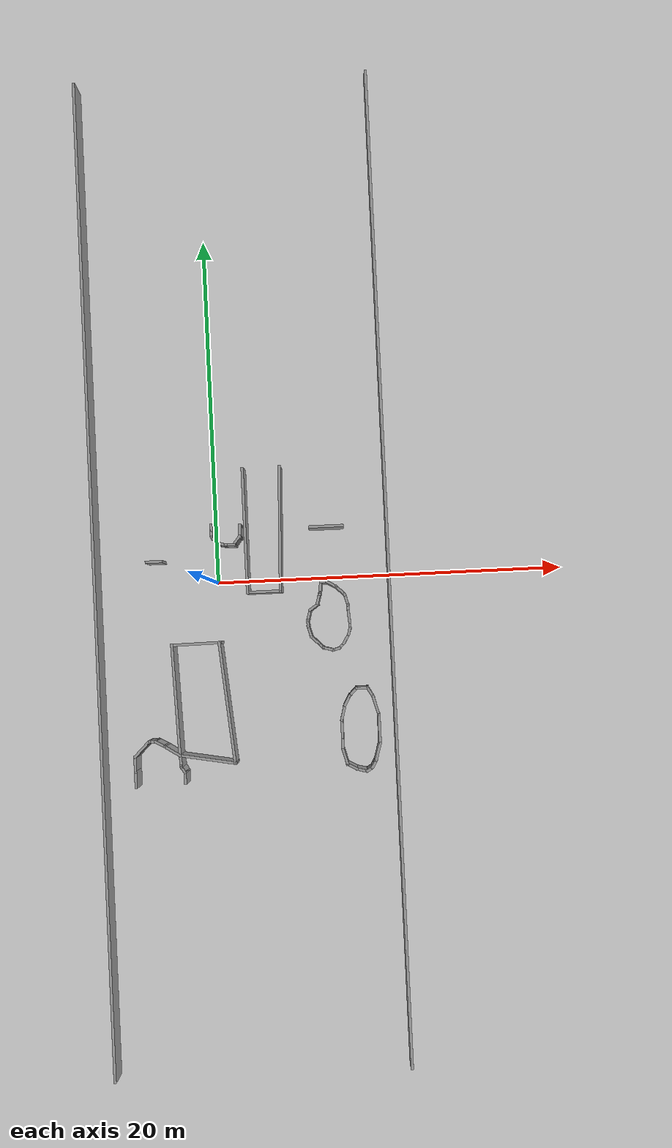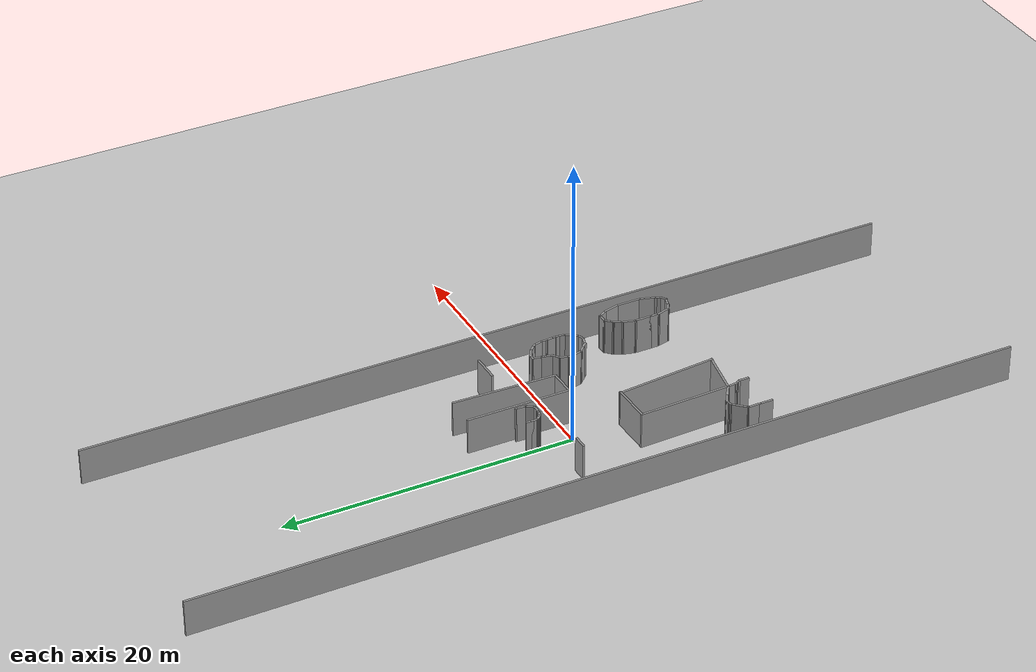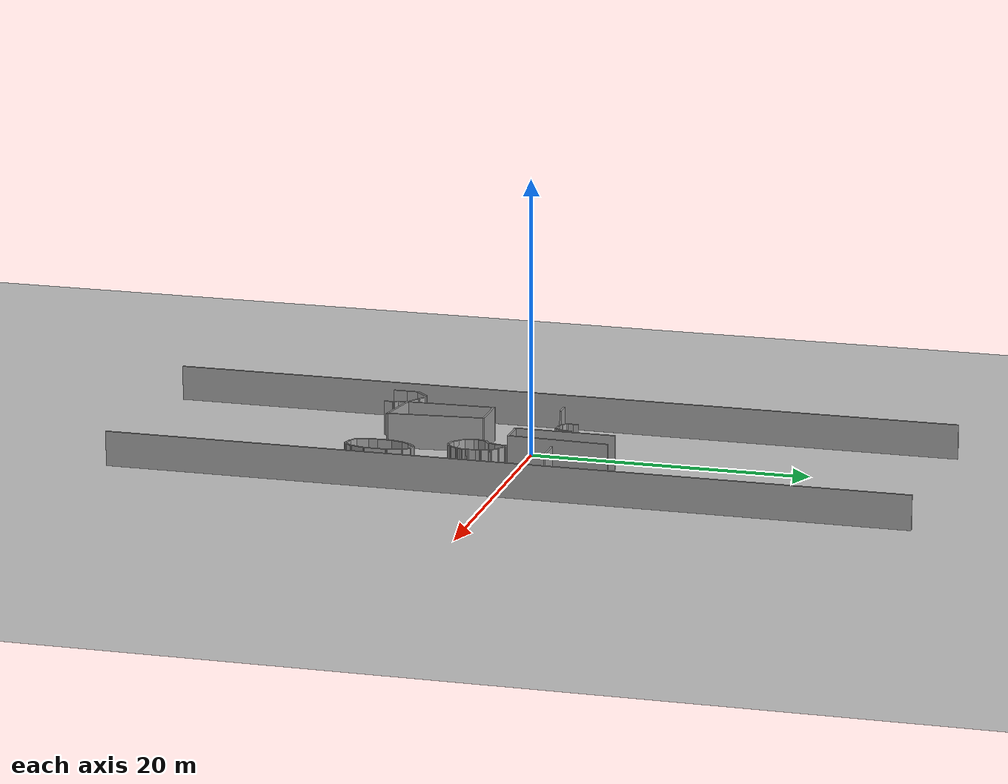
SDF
<sdf version="1.7">
 <world name="default">
  <model name="ground_plane">
   <static>1</static>
   <link name="link">
    <collision name="collision">
     <geometry><plane><normal>0 0 1</normal><size>100 100</size></plane></geometry>
     <surface><friction><ode><mu>100</mu><mu2>50</mu2></ode></friction></surface>
    </collision>
    <visual name="visual">
     <cast_shadows>0</cast_shadows>
     <geometry><plane><normal>0 0 1</normal><size>100 100</size></plane></geometry>
     <material>
      <script><uri>file://media/materials/scripts/gazebo.material</uri><name>Gazebo/Grey</name></script>
     </material>
    </visual>
   </link>
  </model>
  <model name="complex_wall">
   <pose>1.5 0.5 0 0 0 -1.5708</pose>
   <link name="Wall_189">
    <collision name="Wall_189_Collision">
     <geometry><box><size>2 0.15 2.5</size></box></geometry>
     <pose>0 0 1.25 0 -0 0</pose>
    </collision>
    <visual name="Wall_189_Visual">
     <pose>0 0 1.25 0 -0 0</pose>
     <geometry><box><size>2 0.15 2.5</size></box></geometry>
     <material>
      <script><uri>file://media/materials/scripts/gazebo.material</uri><name>Gazebo/Grey</name></script>
      <ambient>1 1 1 1</ambient>
     </material>
     <meta><layer>0</layer></meta>
    </visual>
    <pose>-2.3992 4.94555 0 0 -0 1.5708</pose>
   </link>
   <link name="Wall_193">
    <collision name="Wall_193_Collision">
     <geometry><box><size>7.25 0.15 2.5</size></box></geometry>
     <pose>0 0 1.25 0 -0 0</pose>
    </collision>
    <visual name="Wall_193_Visual">
     <pose>0 0 1.25 0 -0 0</pose>
     <geometry><box><size>7.25 0.15 2.5</size></box></geometry>
     <material>
      <script><uri>file://media/materials/scripts/gazebo.material</uri><name>Gazebo/Grey</name></script>
      <ambient>1 1 1 1</ambient>
     </material>
     <meta><layer>0</layer></meta>
    </visual>
    <pose>-2.36739 0.303352 0 0 -0 0</pose>
   </link>
   <link name="Wall_194">
    <collision name="Wall_194_Collision">
     <geometry><box><size>2.00149 0.15 2.5</size></box></geometry>
     <pose>0 0 1.25 0 -0 0</pose>
    </collision>
    <visual name="Wall_194_Visual">
     <pose>0 0 1.25 0 -0 0</pose>
     <geometry><box><size>2.00149 0.15 2.5</size></box></geometry>
     <material>
      <script><uri>file://media/materials/scripts/gazebo.material</uri><name>Gazebo/Grey</name></script>
      <ambient>1 1 1 1</ambient>
     </material>
     <meta><layer>0</layer></meta>
    </visual>
    <pose>1.18261 1.2291 0 0 -0 1.5708</pose>
   </link>
   <link name="Wall_195">
    <collision name="Wall_195_Collision">
     <geometry><box><size>7.2544 0.15 2.5</size></box></geometry>
     <pose>0 0 1.25 0 -0 0</pose>
    </collision>
    <visual name="Wall_195_Visual">
     <pose>0 0 1.25 0 -0 0</pose>
     <geometry><box><size>7.2544 0.15 2.5</size></box></geometry>
     <material>
      <script><uri>file://media/materials/scripts/gazebo.material</uri><name>Gazebo/Grey</name></script>
      <ambient>1 1 1 1</ambient>
     </material>
     <meta><layer>0</layer></meta>
    </visual>
    <pose>-2.36739 2.30469 0 0 -0 3.1064</pose>
   </link>
   <link name="Wall_207">
    <collision name="Wall_207_Collision">
     <geometry><box><size>0.5 0.15 2.5</size></box></geometry>
     <pose>0 0 1.25 0 -0 0</pose>
    </collision>
    <visual name="Wall_207_Visual">
     <pose>0 0 1.25 0 -0 0</pose>
     <geometry><box><size>0.5 0.15 2.5</size></box></geometry>
     <material>
      <script><uri>file://media/materials/scripts/gazebo.material</uri><name>Gazebo/Grey</name></script>
      <ambient>1 1 1 1</ambient>
     </material>
     <meta><layer>0</layer></meta>
    </visual>
    <pose>-2.60982 -1.61708 0 0 -0 0</pose>
   </link>
   <link name="Wall_208">
    <collision name="Wall_208_Collision">
     <geometry><box><size>0.5 0.15 2.5</size></box></geometry>
     <pose>0 0 1.25 0 -0 0</pose>
    </collision>
    <visual name="Wall_208_Visual">
     <pose>0 0 1.25 0 -0 0</pose>
     <geometry><box><size>0.5 0.15 2.5</size></box></geometry>
     <material>
      <script><uri>file://media/materials/scripts/gazebo.material</uri><name>Gazebo/Grey</name></script>
      <ambient>1 1 1 1</ambient>
     </material>
     <meta><layer>0</layer></meta>
    </visual>
    <pose>-2.25982 -1.61708 0 0 -0 0</pose>
   </link>
   <link name="Wall_209">
    <collision name="Wall_209_Collision">
     <geometry><box><size>0.25 0.15 2.5</size></box></geometry>
     <pose>0 0 1.25 0 -0 0</pose>
    </collision>
    <visual name="Wall_209_Visual">
     <pose>0 0 1.25 0 -0 0</pose>
     <geometry><box><size>0.25 0.15 2.5</size></box></geometry>
     <material>
      <script><uri>file://media/materials/scripts/gazebo.material</uri><name>Gazebo/Grey</name></script>
      <ambient>1 1 1 1</ambient>
     </material>
     <meta><layer>0</layer></meta>
    </visual>
    <pose>-2.04152 -1.59207 0 0 -0 0.523599</pose>
   </link>
   <link name="Wall_210">
    <collision name="Wall_210_Collision">
     <geometry><box><size>0.5 0.15 2.5</size></box></geometry>
     <pose>0 0 1.25 0 -0 0</pose>
    </collision>
    <visual name="Wall_210_Visual">
     <pose>0 0 1.25 0 -0 0</pose>
     <geometry><box><size>0.5 0.15 2.5</size></box></geometry>
     <material>
      <script><uri>file://media/materials/scripts/gazebo.material</uri><name>Gazebo/Grey</name></script>
      <ambient>1 1 1 1</ambient>
     </material>
     <meta><layer>0</layer></meta>
    </visual>
    <pose>-1.87447 -1.44333 0 0 -0 0.785398</pose>
   </link>
   <link name="Wall_211">
    <collision name="Wall_211_Collision">
     <geometry><box><size>0.25 0.15 2.5</size></box></geometry>
     <pose>0 0 1.25 0 -0 0</pose>
    </collision>
    <visual name="Wall_211_Visual">
     <pose>0 0 1.25 0 -0 0</pose>
     <geometry><box><size>0.25 0.15 2.5</size></box></geometry>
     <material>
      <script><uri>file://media/materials/scripts/gazebo.material</uri><name>Gazebo/Grey</name></script>
      <ambient>1 1 1 1</ambient>
     </material>
     <meta><layer>0</layer></meta>
    </visual>
    <pose>-1.72573 -1.27629 0 0 -0 1.0472</pose>
   </link>
   <link name="Wall_212">
    <collision name="Wall_212_Collision">
     <geometry><box><size>0.5 0.15 2.5</size></box></geometry>
     <pose>0 0 1.25 0 -0 0</pose>
    </collision>
    <visual name="Wall_212_Visual">
     <pose>0 0 1.25 0 -0 0</pose>
     <geometry><box><size>0.5 0.15 2.5</size></box></geometry>
     <material>
      <script><uri>file://media/materials/scripts/gazebo.material</uri><name>Gazebo/Grey</name></script>
      <ambient>1 1 1 1</ambient>
     </material>
     <meta><layer>0</layer></meta>
    </visual>
    <pose>-1.65543 -1.06395 0 0 -0 1.309</pose>
   </link>
   <link name="Wall_213">
    <collision name="Wall_213_Collision">
     <geometry><box><size>0.15 0.15 2.5</size></box></geometry>
     <pose>0 0 1.25 0 -0 0</pose>
    </collision>
    <visual name="Wall_213_Visual">
     <pose>0 0 1.25 0 -0 0</pose>
     <geometry><box><size>0.15 0.15 2.5</size></box></geometry>
     <material>
      <script><uri>file://media/materials/scripts/gazebo.material</uri><name>Gazebo/Grey</name></script>
      <ambient>1 1 1 1</ambient>
     </material>
     <meta><layer>0</layer></meta>
    </visual>
    <pose>-1.61014 -0.894911 0 0 -0 0</pose>
   </link>
   <link name="Wall_214">
    <collision name="Wall_214_Collision">
     <geometry><box><size>0.25 0.15 2.5</size></box></geometry>
     <pose>0 0 1.25 0 -0 0</pose>
    </collision>
    <visual name="Wall_214_Visual">
     <pose>0 0 1.25 0 -0 0</pose>
     <geometry><box><size>0.25 0.15 2.5</size></box></geometry>
     <material>
      <script><uri>file://media/materials/scripts/gazebo.material</uri><name>Gazebo/Grey</name></script>
      <ambient>1 1 1 1</ambient>
     </material>
     <meta><layer>0</layer></meta>
    </visual>
    <pose>-1.61014 -0.844911 0 0 -0 1.5708</pose>
   </link>
   <link name="Wall_215">
    <collision name="Wall_215_Collision">
     <geometry><box><size>0.612805 0.15 2.5</size></box></geometry>
     <pose>0 0 1.25 0 -0 0</pose>
    </collision>
    <visual name="Wall_215_Visual">
     <pose>0 0 1.25 0 -0 0</pose>
     <geometry><box><size>0.612805 0.15 2.5</size></box></geometry>
     <material>
      <script><uri>file://media/materials/scripts/gazebo.material</uri><name>Gazebo/Grey</name></script>
      <ambient>1 1 1 1</ambient>
     </material>
     <meta><layer>0</layer></meta>
    </visual>
    <pose>-1.59366 -0.564096 0 0 -0 1.4995</pose>
   </link>
   <link name="Wall_216">
    <collision name="Wall_216_Collision">
     <geometry><box><size>0.698828 0.15 2.5</size></box></geometry>
     <pose>0 0 1.25 0 -0 0</pose>
    </collision>
    <visual name="Wall_216_Visual">
     <pose>0 0 1.25 0 -0 0</pose>
     <geometry><box><size>0.698828 0.15 2.5</size></box></geometry>
     <material>
      <script><uri>file://media/materials/scripts/gazebo.material</uri><name>Gazebo/Grey</name></script>
      <ambient>1 1 1 1</ambient>
     </material>
     <meta><layer>0</layer></meta>
    </visual>
    <pose>-1.8308 -0.177104 0 0 -0 2.48028</pose>
   </link>
   <link name="Wall_217">
    <collision name="Wall_217_Collision">
     <geometry><box><size>0.84448 0.15 2.5</size></box></geometry>
     <pose>0 0 1.25 0 -0 0</pose>
    </collision>
    <visual name="Wall_217_Visual">
     <pose>0 0 1.25 0 -0 0</pose>
     <geometry><box><size>0.84448 0.15 2.5</size></box></geometry>
     <material>
      <script><uri>file://media/materials/scripts/gazebo.material</uri><name>Gazebo/Grey</name></script>
      <ambient>1 1 1 1</ambient>
     </material>
     <meta><layer>0</layer></meta>
    </visual>
    <pose>-2.35744 0.011931 0 0 -0 3.11813</pose>
   </link>
   <link name="Wall_218">
    <collision name="Wall_218_Collision">
     <geometry><box><size>0.15 0.15 2.5</size></box></geometry>
     <pose>0 0 1.25 0 -0 0</pose>
    </collision>
    <visual name="Wall_218_Visual">
     <pose>0 0 1.25 0 -0 0</pose>
     <geometry><box><size>0.15 0.15 2.5</size></box></geometry>
     <material>
      <script><uri>file://media/materials/scripts/gazebo.material</uri><name>Gazebo/Grey</name></script>
      <ambient>1 1 1 1</ambient>
     </material>
     <meta><layer>0</layer></meta>
    </visual>
    <pose>-2.69223 0.020077 0 0 -0 0</pose>
   </link>
   <link name="Wall_253">
    <collision name="Wall_253_Collision">
     <geometry><box><size>1 0.15 2.5</size></box></geometry>
     <pose>0 0 1.25 0 -0 0</pose>
    </collision>
    <visual name="Wall_253_Visual">
     <pose>0 0 1.25 0 -0 0</pose>
     <geometry><box><size>1 0.15 2.5</size></box></geometry>
     <material>
      <script><uri>file://media/materials/scripts/gazebo.material</uri><name>Gazebo/Grey</name></script>
      <ambient>1 1 1 1</ambient>
     </material>
     <meta><layer>0</layer></meta>
    </visual>
    <pose>-0.814704 -4.97684 0 0 -0 1.5708</pose>
   </link>
   <link name="Wall_256">
    <collision name="Wall_256_Collision">
     <geometry><box><size>2.85471 0.15 2.5</size></box></geometry>
     <pose>0 0 1.25 0 -0 0</pose>
    </collision>
    <visual name="Wall_256_Visual">
     <pose>0 0 1.25 0 -0 0</pose>
     <geometry><box><size>2.85471 0.15 2.5</size></box></geometry>
     <material>
      <script><uri>file://media/materials/scripts/gazebo.material</uri><name>Gazebo/Grey</name></script>
      <ambient>1 1 1 1</ambient>
     </material>
     <meta><layer>0</layer></meta>
    </visual>
    <pose>3.97814 -2.74654 0 0 -0 -1.55865</pose>
   </link>
   <link name="Wall_257">
    <collision name="Wall_257_Collision">
     <geometry><box><size>6.44796 0.15 2.5</size></box></geometry>
     <pose>0 0 1.25 0 -0 0</pose>
    </collision>
    <visual name="Wall_257_Visual">
     <pose>0 0 1.25 0 -0 0</pose>
     <geometry><box><size>6.44796 0.15 2.5</size></box></geometry>
     <material>
      <script><uri>file://media/materials/scripts/gazebo.material</uri><name>Gazebo/Grey</name></script>
      <ambient>1 1 1 1</ambient>
     </material>
     <meta><layer>0</layer></meta>
    </visual>
    <pose>7.14138 -4.0526 0 0 -0 0.032582</pose>
   </link>
   <link name="Wall_258">
    <collision name="Wall_258_Collision">
     <geometry><box><size>3.32697 0.15 2.5</size></box></geometry>
     <pose>0 0 1.25 0 -0 0</pose>
    </collision>
    <visual name="Wall_258_Visual">
     <pose>0 0 1.25 0 -0 0</pose>
     <geometry><box><size>3.32697 0.15 2.5</size></box></geometry>
     <material>
      <script><uri>file://media/materials/scripts/gazebo.material</uri><name>Gazebo/Grey</name></script>
      <ambient>1 1 1 1</ambient>
     </material>
     <meta><layer>0</layer></meta>
    </visual>
    <pose>10.5759 -2.35923 0 0 -0 1.38869</pose>
   </link>
   <link name="Wall_259">
    <collision name="Wall_259_Collision">
     <geometry><box><size>7.0801 0.15 2.5</size></box></geometry>
     <pose>0 0 1.25 0 -0 0</pose>
    </collision>
    <visual name="Wall_259_Visual">
     <pose>0 0 1.25 0 -0 0</pose>
     <geometry><box><size>7.0801 0.15 2.5</size></box></geometry>
     <material>
      <script><uri>file://media/materials/scripts/gazebo.material</uri><name>Gazebo/Grey</name></script>
      <ambient>1 1 1 1</ambient>
     </material>
     <meta><layer>0</layer></meta>
    </visual>
    <pose>7.41263 -1.13812 0 0 -0 -3.05127</pose>
   </link>
   <link name="Wall_261">
    <collision name="Wall_261_Collision">
     <geometry><box><size>1.15263 0.15 2.5</size></box></geometry>
     <pose>0 0 1.25 0 -0 0</pose>
    </collision>
    <visual name="Wall_261_Visual">
     <pose>0 0 1.25 0 -0 0</pose>
     <geometry><box><size>1.15263 0.15 2.5</size></box></geometry>
     <material>
      <script><uri>file://media/materials/scripts/gazebo.material</uri><name>Gazebo/Grey</name></script>
      <ambient>1 1 1 1</ambient>
     </material>
     <meta><layer>0</layer></meta>
    </visual>
    <pose>10.0132 -4.36919 0 0 -0 -2.15143</pose>
   </link>
   <link name="Wall_262">
    <collision name="Wall_262_Collision">
     <geometry><box><size>0.75 0.15 2.5</size></box></geometry>
     <pose>0 0 1.25 0 -0 0</pose>
    </collision>
    <visual name="Wall_262_Visual">
     <pose>0 0 1.25 0 -0 0</pose>
     <geometry><box><size>0.75 0.15 2.5</size></box></geometry>
     <material>
      <script><uri>file://media/materials/scripts/gazebo.material</uri><name>Gazebo/Grey</name></script>
      <ambient>1 1 1 1</ambient>
     </material>
     <meta><layer>0</layer></meta>
    </visual>
    <pose>9.5882 -5.04815 0 0 -0 -2.0944</pose>
   </link>
   <link name="Wall_263">
    <collision name="Wall_263_Collision">
     <geometry><box><size>0.5 0.15 2.5</size></box></geometry>
     <pose>0 0 1.25 0 -0 0</pose>
    </collision>
    <visual name="Wall_263_Visual">
     <pose>0 0 1.25 0 -0 0</pose>
     <geometry><box><size>0.5 0.15 2.5</size></box></geometry>
     <material>
      <script><uri>file://media/materials/scripts/gazebo.material</uri><name>Gazebo/Grey</name></script>
      <ambient>1 1 1 1</ambient>
     </material>
     <meta><layer>0</layer></meta>
    </visual>
    <pose>9.43819 -5.48296 0 0 -0 -1.5708</pose>
   </link>
   <link name="Wall_264">
    <collision name="Wall_264_Collision">
     <geometry><box><size>0.25 0.15 2.5</size></box></geometry>
     <pose>0 0 1.25 0 -0 0</pose>
    </collision>
    <visual name="Wall_264_Visual">
     <pose>0 0 1.25 0 -0 0</pose>
     <geometry><box><size>0.25 0.15 2.5</size></box></geometry>
     <material>
      <script><uri>file://media/materials/scripts/gazebo.material</uri><name>Gazebo/Grey</name></script>
      <ambient>1 1 1 1</ambient>
     </material>
     <meta><layer>0</layer></meta>
    </visual>
    <pose>9.4632 -5.70126 0 0 -0 -1.0472</pose>
   </link>
   <link name="Wall_265">
    <collision name="Wall_265_Collision">
     <geometry><box><size>1.25 0.15 2.5</size></box></geometry>
     <pose>0 0 1.25 0 -0 0</pose>
    </collision>
    <visual name="Wall_265_Visual">
     <pose>0 0 1.25 0 -0 0</pose>
     <geometry><box><size>1.25 0.15 2.5</size></box></geometry>
     <material>
      <script><uri>file://media/materials/scripts/gazebo.material</uri><name>Gazebo/Grey</name></script>
      <ambient>1 1 1 1</ambient>
     </material>
     <meta><layer>0</layer></meta>
    </visual>
    <pose>9.8771 -6.13347 0 0 -0 -0.785398</pose>
   </link>
   <link name="Wall_266">
    <collision name="Wall_266_Collision">
     <geometry><box><size>1 0.15 2.5</size></box></geometry>
     <pose>0 0 1.25 0 -0 0</pose>
    </collision>
    <visual name="Wall_266_Visual">
     <pose>0 0 1.25 0 -0 0</pose>
     <geometry><box><size>1 0.15 2.5</size></box></geometry>
     <material>
      <script><uri>file://media/materials/scripts/gazebo.material</uri><name>Gazebo/Grey</name></script>
      <ambient>1 1 1 1</ambient>
     </material>
     <meta><layer>0</layer></meta>
    </visual>
    <pose>10.691 -6.52238 0 0 -0 0</pose>
   </link>
   <link name="Wall_267">
    <collision name="Wall_267_Collision">
     <geometry><box><size>1 0.15 2.5</size></box></geometry>
     <pose>0 0 1.25 0 -0 0</pose>
    </collision>
    <visual name="Wall_267_Visual">
     <pose>0 0 1.25 0 -0 0</pose>
     <geometry><box><size>1 0.15 2.5</size></box></geometry>
     <material>
      <script><uri>file://media/materials/scripts/gazebo.material</uri><name>Gazebo/Grey</name></script>
      <ambient>1 1 1 1</ambient>
     </material>
     <meta><layer>0</layer></meta>
    </visual>
    <pose>11.541 -6.52238 0 0 -0 0</pose>
   </link>
   <link name="Wall_278">
    <collision name="Wall_278_Collision">
     <geometry><box><size>0.75 0.15 2.5</size></box></geometry>
     <pose>0 0 1.25 0 -0 0</pose>
    </collision>
    <visual name="Wall_278_Visual">
     <pose>0 0 1.25 0 -0 0</pose>
     <geometry><box><size>0.75 0.15 2.5</size></box></geometry>
     <material>
      <script><uri>file://media/materials/scripts/gazebo.material</uri><name>Gazebo/Grey</name></script>
      <ambient>1 1 1 1</ambient>
     </material>
     <meta><layer>0</layer></meta>
    </visual>
    <pose>11.565 -3.70707 0 0 -0 3.14159</pose>
   </link>
   <link name="Wall_279">
    <collision name="Wall_279_Collision">
     <geometry><box><size>0.5 0.15 2.5</size></box></geometry>
     <pose>0 0 1.25 0 -0 0</pose>
    </collision>
    <visual name="Wall_279_Visual">
     <pose>0 0 1.25 0 -0 0</pose>
     <geometry><box><size>0.5 0.15 2.5</size></box></geometry>
     <material>
      <script><uri>file://media/materials/scripts/gazebo.material</uri><name>Gazebo/Grey</name></script>
      <ambient>1 1 1 1</ambient>
     </material>
     <meta><layer>0</layer></meta>
    </visual>
    <pose>11.1135 -3.79457 0 0 -0 -2.61799</pose>
   </link>
   <link name="Wall_280">
    <collision name="Wall_280_Collision">
     <geometry><box><size>0.25 0.15 2.5</size></box></geometry>
     <pose>0 0 1.25 0 -0 0</pose>
    </collision>
    <visual name="Wall_280_Visual">
     <pose>0 0 1.25 0 -0 0</pose>
     <geometry><box><size>0.25 0.15 2.5</size></box></geometry>
     <material>
      <script><uri>file://media/materials/scripts/gazebo.material</uri><name>Gazebo/Grey</name></script>
      <ambient>1 1 1 1</ambient>
     </material>
     <meta><layer>0</layer></meta>
    </visual>
    <pose>10.9136 -3.89501 0 0 -0 -2.87979</pose>
   </link>
   <link name="Wall_282">
    <collision name="Wall_282_Collision">
     <geometry><box><size>0.827152 0.15 2.5</size></box></geometry>
     <pose>0 0 1.25 0 -0 0</pose>
    </collision>
    <visual name="Wall_282_Visual">
     <pose>0 0 1.25 0 -0 0</pose>
     <geometry><box><size>0.827152 0.15 2.5</size></box></geometry>
     <material>
      <script><uri>file://media/materials/scripts/gazebo.material</uri><name>Gazebo/Grey</name></script>
      <ambient>1 1 1 1</ambient>
     </material>
     <meta><layer>0</layer></meta>
    </visual>
    <pose>10.6251 -3.91605 0 0 -0 -3.04106</pose>
   </link>
   <link name="Wall_283">
    <collision name="Wall_283_Collision">
     <geometry><box><size>0.15 0.15 2.5</size></box></geometry>
     <pose>0 0 1.25 0 -0 0</pose>
    </collision>
    <visual name="Wall_283_Visual">
     <pose>0 0 1.25 0 -0 0</pose>
     <geometry><box><size>0.15 0.15 2.5</size></box></geometry>
     <material>
      <script><uri>file://media/materials/scripts/gazebo.material</uri><name>Gazebo/Grey</name></script>
      <ambient>1 1 1 1</ambient>
     </material>
     <meta><layer>0</layer></meta>
    </visual>
    <pose>10.2882 -3.95003 0 0 -0 0</pose>
   </link>
   <link name="Wall_286">
    <collision name="Wall_286_Collision">
     <geometry><box><size>0.5 0.15 2.5</size></box></geometry>
     <pose>0 0 1.25 0 -0 0</pose>
    </collision>
    <visual name="Wall_286_Visual">
     <pose>0 0 1.25 0 -0 0</pose>
     <geometry><box><size>0.5 0.15 2.5</size></box></geometry>
     <material>
      <script><uri>file://media/materials/scripts/gazebo.material</uri><name>Gazebo/Grey</name></script>
      <ambient>1 1 1 1</ambient>
     </material>
     <meta><layer>0</layer></meta>
    </visual>
    <pose>2.3435 6.00433 0 0 -0 3.14159</pose>
   </link>
   <link name="Wall_287">
    <collision name="Wall_287_Collision">
     <geometry><box><size>0.75 0.15 2.5</size></box></geometry>
     <pose>0 0 1.25 0 -0 0</pose>
    </collision>
    <visual name="Wall_287_Visual">
     <pose>0 0 1.25 0 -0 0</pose>
     <geometry><box><size>0.75 0.15 2.5</size></box></geometry>
     <material>
      <script><uri>file://media/materials/scripts/gazebo.material</uri><name>Gazebo/Grey</name></script>
      <ambient>1 1 1 1</ambient>
     </material>
     <meta><layer>0</layer></meta>
    </visual>
    <pose>1.87872 5.92668 0 0 -0 -2.87979</pose>
   </link>
   <link name="Wall_288">
    <collision name="Wall_288_Collision">
     <geometry><box><size>0.25 0.15 2.5</size></box></geometry>
     <pose>0 0 1.25 0 -0 0</pose>
    </collision>
    <visual name="Wall_288_Visual">
     <pose>0 0 1.25 0 -0 0</pose>
     <geometry><box><size>0.25 0.15 2.5</size></box></geometry>
     <material>
      <script><uri>file://media/materials/scripts/gazebo.material</uri><name>Gazebo/Grey</name></script>
      <ambient>1 1 1 1</ambient>
     </material>
     <meta><layer>0</layer></meta>
    </visual>
    <pose>1.54565 5.82404 0 0 -0 -2.61799</pose>
   </link>
   <link name="Wall_289">
    <collision name="Wall_289_Collision">
     <geometry><box><size>0.75 0.15 2.5</size></box></geometry>
     <pose>0 0 1.25 0 -0 0</pose>
    </collision>
    <visual name="Wall_289_Visual">
     <pose>0 0 1.25 0 -0 0</pose>
     <geometry><box><size>0.75 0.15 2.5</size></box></geometry>
     <material>
      <script><uri>file://media/materials/scripts/gazebo.material</uri><name>Gazebo/Grey</name></script>
      <ambient>1 1 1 1</ambient>
     </material>
     <meta><layer>0</layer></meta>
    </visual>
    <pose>1.29021 5.58691 0 0 -0 -2.35619</pose>
   </link>
   <link name="Wall_290">
    <collision name="Wall_290_Collision">
     <geometry><box><size>0.75 0.15 2.5</size></box></geometry>
     <pose>0 0 1.25 0 -0 0</pose>
    </collision>
    <visual name="Wall_290_Visual">
     <pose>0 0 1.25 0 -0 0</pose>
     <geometry><box><size>0.75 0.15 2.5</size></box></geometry>
     <material>
      <script><uri>file://media/materials/scripts/gazebo.material</uri><name>Gazebo/Grey</name></script>
      <ambient>1 1 1 1</ambient>
     </material>
     <meta><layer>0</layer></meta>
    </visual>
    <pose>0.92808 5.11497 0 0 -0 -2.0944</pose>
   </link>
   <link name="Wall_291">
    <collision name="Wall_291_Collision">
     <geometry><box><size>0.5 0.15 2.5</size></box></geometry>
     <pose>0 0 1.25 0 -0 0</pose>
    </collision>
    <visual name="Wall_291_Visual">
     <pose>0 0 1.25 0 -0 0</pose>
     <geometry><box><size>0.5 0.15 2.5</size></box></geometry>
     <material>
      <script><uri>file://media/materials/scripts/gazebo.material</uri><name>Gazebo/Grey</name></script>
      <ambient>1 1 1 1</ambient>
     </material>
     <meta><layer>0</layer></meta>
    </visual>
    <pose>0.77808 4.68016 0 0 -0 -1.5708</pose>
   </link>
   <link name="Wall_292">
    <collision name="Wall_292_Collision">
     <geometry><box><size>0.849073 0.15 2.5</size></box></geometry>
     <pose>0 0 1.25 0 -0 0</pose>
    </collision>
    <visual name="Wall_292_Visual">
     <pose>0 0 1.25 0 -0 0</pose>
     <geometry><box><size>0.849073 0.15 2.5</size></box></geometry>
     <material>
      <script><uri>file://media/materials/scripts/gazebo.material</uri><name>Gazebo/Grey</name></script>
      <ambient>1 1 1 1</ambient>
     </material>
     <meta><layer>0</layer></meta>
    </visual>
    <pose>1.1249 4.46165 0 0 -0 -0.124789</pose>
   </link>
   <link name="Wall_293">
    <collision name="Wall_293_Collision">
     <geometry><box><size>0.75 0.15 2.5</size></box></geometry>
     <pose>0 0 1.25 0 -0 0</pose>
    </collision>
    <visual name="Wall_293_Visual">
     <pose>0 0 1.25 0 -0 0</pose>
     <geometry><box><size>0.75 0.15 2.5</size></box></geometry>
     <material>
      <script><uri>file://media/materials/scripts/gazebo.material</uri><name>Gazebo/Grey</name></script>
      <ambient>1 1 1 1</ambient>
     </material>
     <meta><layer>0</layer></meta>
    </visual>
    <pose>1.67506 4.3405 0 0 -0 -0.261799</pose>
   </link>
   <link name="Wall_294">
    <collision name="Wall_294_Collision">
     <geometry><box><size>0.680683 0.15 2.5</size></box></geometry>
     <pose>0 0 1.25 0 -0 0</pose>
    </collision>
    <visual name="Wall_294_Visual">
     <pose>0 0 1.25 0 -0 0</pose>
     <geometry><box><size>0.680683 0.15 2.5</size></box></geometry>
     <material>
      <script><uri>file://media/materials/scripts/gazebo.material</uri><name>Gazebo/Grey</name></script>
      <ambient>1 1 1 1</ambient>
     </material>
     <meta><layer>0</layer></meta>
    </visual>
    <pose>2.20247 4.04481 0 0 -0 -0.964496</pose>
   </link>
   <link name="Wall_295">
    <collision name="Wall_295_Collision">
     <geometry><box><size>0.75 0.15 2.5</size></box></geometry>
     <pose>0 0 1.25 0 -0 0</pose>
    </collision>
    <visual name="Wall_295_Visual">
     <pose>0 0 1.25 0 -0 0</pose>
     <geometry><box><size>0.75 0.15 2.5</size></box></geometry>
     <material>
      <script><uri>file://media/materials/scripts/gazebo.material</uri><name>Gazebo/Grey</name></script>
      <ambient>1 1 1 1</ambient>
     </material>
     <meta><layer>0</layer></meta>
    </visual>
    <pose>2.64345 3.74912 0 0 -0 -0.261799</pose>
   </link>
   <link name="Wall_296">
    <collision name="Wall_296_Collision">
     <geometry><box><size>0.5 0.15 2.5</size></box></geometry>
     <pose>0 0 1.25 0 -0 0</pose>
    </collision>
    <visual name="Wall_296_Visual">
     <pose>0 0 1.25 0 -0 0</pose>
     <geometry><box><size>0.5 0.15 2.5</size></box></geometry>
     <material>
      <script><uri>file://media/materials/scripts/gazebo.material</uri><name>Gazebo/Grey</name></script>
      <ambient>1 1 1 1</ambient>
     </material>
     <meta><layer>0</layer></meta>
    </visual>
    <pose>3.10823 3.67147 0 0 -0 0</pose>
   </link>
   <link name="Wall_297">
    <collision name="Wall_297_Collision">
     <geometry><box><size>0.75 0.15 2.5</size></box></geometry>
     <pose>0 0 1.25 0 -0 0</pose>
    </collision>
    <visual name="Wall_297_Visual">
     <pose>0 0 1.25 0 -0 0</pose>
     <geometry><box><size>0.75 0.15 2.5</size></box></geometry>
     <material>
      <script><uri>file://media/materials/scripts/gazebo.material</uri><name>Gazebo/Grey</name></script>
      <ambient>1 1 1 1</ambient>
     </material>
     <meta><layer>0</layer></meta>
    </visual>
    <pose>3.57301 3.74912 0 0 -0 0.261799</pose>
   </link>
   <link name="Wall_298">
    <collision name="Wall_298_Collision">
     <geometry><box><size>0.75 0.15 2.5</size></box></geometry>
     <pose>0 0 1.25 0 -0 0</pose>
    </collision>
    <visual name="Wall_298_Visual">
     <pose>0 0 1.25 0 -0 0</pose>
     <geometry><box><size>0.75 0.15 2.5</size></box></geometry>
     <material>
      <script><uri>file://media/materials/scripts/gazebo.material</uri><name>Gazebo/Grey</name></script>
      <ambient>1 1 1 1</ambient>
     </material>
     <meta><layer>0</layer></meta>
    </visual>
    <pose>4.07492 4.03889 0 0 -0 0.785398</pose>
   </link>
   <link name="Wall_299">
    <collision name="Wall_299_Collision">
     <geometry><box><size>0.5 0.15 2.5</size></box></geometry>
     <pose>0 0 1.25 0 -0 0</pose>
    </collision>
    <visual name="Wall_299_Visual">
     <pose>0 0 1.25 0 -0 0</pose>
     <geometry><box><size>0.5 0.15 2.5</size></box></geometry>
     <material>
      <script><uri>file://media/materials/scripts/gazebo.material</uri><name>Gazebo/Grey</name></script>
      <ambient>1 1 1 1</ambient>
     </material>
     <meta><layer>0</layer></meta>
    </visual>
    <pose>4.41079 4.37477 0 0 -0 0.785398</pose>
   </link>
   <link name="Wall_300">
    <collision name="Wall_300_Collision">
     <geometry><box><size>0.75 0.15 2.5</size></box></geometry>
     <pose>0 0 1.25 0 -0 0</pose>
    </collision>
    <visual name="Wall_300_Visual">
     <pose>0 0 1.25 0 -0 0</pose>
     <geometry><box><size>0.75 0.15 2.5</size></box></geometry>
     <material>
      <script><uri>file://media/materials/scripts/gazebo.material</uri><name>Gazebo/Grey</name></script>
      <ambient>1 1 1 1</ambient>
     </material>
     <meta><layer>0</layer></meta>
    </visual>
    <pose>4.61218 4.78829 0 0 -0 1.309</pose>
   </link>
   <link name="Wall_301">
    <collision name="Wall_301_Collision">
     <geometry><box><size>0.5 0.15 2.5</size></box></geometry>
     <pose>0 0 1.25 0 -0 0</pose>
    </collision>
    <visual name="Wall_301_Visual">
     <pose>0 0 1.25 0 -0 0</pose>
     <geometry><box><size>0.5 0.15 2.5</size></box></geometry>
     <material>
      <script><uri>file://media/materials/scripts/gazebo.material</uri><name>Gazebo/Grey</name></script>
      <ambient>1 1 1 1</ambient>
     </material>
     <meta><layer>0</layer></meta>
    </visual>
    <pose>4.64453 5.24711 0 0 -0 1.8326</pose>
   </link>
   <link name="Wall_302">
    <collision name="Wall_302_Collision">
     <geometry><box><size>0.5 0.15 2.5</size></box></geometry>
     <pose>0 0 1.25 0 -0 0</pose>
    </collision>
    <visual name="Wall_302_Visual">
     <pose>0 0 1.25 0 -0 0</pose>
     <geometry><box><size>0.5 0.15 2.5</size></box></geometry>
     <material>
      <script><uri>file://media/materials/scripts/gazebo.material</uri><name>Gazebo/Grey</name></script>
      <ambient>1 1 1 1</ambient>
     </material>
     <meta><layer>0</layer></meta>
    </visual>
    <pose>4.4755 5.53989 0 0 -0 2.35619</pose>
   </link>
   <link name="Wall_303">
    <collision name="Wall_303_Collision">
     <geometry><box><size>0.75 0.15 2.5</size></box></geometry>
     <pose>0 0 1.25 0 -0 0</pose>
    </collision>
    <visual name="Wall_303_Visual">
     <pose>0 0 1.25 0 -0 0</pose>
     <geometry><box><size>0.75 0.15 2.5</size></box></geometry>
     <material>
      <script><uri>file://media/materials/scripts/gazebo.material</uri><name>Gazebo/Grey</name></script>
      <ambient>1 1 1 1</ambient>
     </material>
     <meta><layer>0</layer></meta>
    </visual>
    <pose>4.09194 5.81363 0 0 -0 2.61799</pose>
   </link>
   <link name="Wall_304">
    <collision name="Wall_304_Collision">
     <geometry><box><size>0.5 0.15 2.5</size></box></geometry>
     <pose>0 0 1.25 0 -0 0</pose>
    </collision>
    <visual name="Wall_304_Visual">
     <pose>0 0 1.25 0 -0 0</pose>
     <geometry><box><size>0.5 0.15 2.5</size></box></geometry>
     <material>
      <script><uri>file://media/materials/scripts/gazebo.material</uri><name>Gazebo/Grey</name></script>
      <ambient>1 1 1 1</ambient>
     </material>
     <meta><layer>0</layer></meta>
    </visual>
    <pose>3.6631 6.00892 0 0 -0 2.87979</pose>
   </link>
   <link name="Wall_305">
    <collision name="Wall_305_Collision">
     <geometry><box><size>0.5 0.15 2.5</size></box></geometry>
     <pose>0 0 1.25 0 -0 0</pose>
    </collision>
    <visual name="Wall_305_Visual">
     <pose>0 0 1.25 0 -0 0</pose>
     <geometry><box><size>0.5 0.15 2.5</size></box></geometry>
     <material>
      <script><uri>file://media/materials/scripts/gazebo.material</uri><name>Gazebo/Grey</name></script>
      <ambient>1 1 1 1</ambient>
     </material>
     <meta><layer>0</layer></meta>
    </visual>
    <pose>3.31906 6.05422 0 0 -0 3.14159</pose>
   </link>
   <link name="Wall_306">
    <collision name="Wall_306_Collision">
     <geometry><box><size>0.25 0.15 2.5</size></box></geometry>
     <pose>0 0 1.25 0 -0 0</pose>
    </collision>
    <visual name="Wall_306_Visual">
     <pose>0 0 1.25 0 -0 0</pose>
     <geometry><box><size>0.25 0.15 2.5</size></box></geometry>
     <material>
      <script><uri>file://media/materials/scripts/gazebo.material</uri><name>Gazebo/Grey</name></script>
      <ambient>1 1 1 1</ambient>
     </material>
     <meta><layer>0</layer></meta>
    </visual>
    <pose>3.09406 6.05422 0 0 -0 3.14159</pose>
   </link>
   <link name="Wall_308">
    <collision name="Wall_308_Collision">
     <geometry><box><size>0.777547 0.15 2.5</size></box></geometry>
     <pose>0 0 1.25 0 -0 0</pose>
    </collision>
    <visual name="Wall_308_Visual">
     <pose>0 0 1.25 0 -0 0</pose>
     <geometry><box><size>0.777547 0.15 2.5</size></box></geometry>
     <material>
      <script><uri>file://media/materials/scripts/gazebo.material</uri><name>Gazebo/Grey</name></script>
      <ambient>1 1 1 1</ambient>
     </material>
     <meta><layer>0</layer></meta>
    </visual>
    <pose>2.83128 6.02927 0 0 -0 -3.06201</pose>
   </link>
   <link name="Wall_310">
    <collision name="Wall_310_Collision">
     <geometry><box><size>1.75 0.15 2.5</size></box></geometry>
     <pose>0 0 1.25 0 -0 0</pose>
    </collision>
    <visual name="Wall_310_Visual">
     <pose>0 0 1.25 0 -0 0</pose>
     <geometry><box><size>1.75 0.15 2.5</size></box></geometry>
     <material>
      <script><uri>file://media/materials/scripts/gazebo.material</uri><name>Gazebo/Grey</name></script>
      <ambient>1 1 1 1</ambient>
     </material>
     <meta><layer>0</layer></meta>
    </visual>
    <pose>9.30633 7.4742 0 0 -0 3.14159</pose>
   </link>
   <link name="Wall_311">
    <collision name="Wall_311_Collision">
     <geometry><box><size>1.25 0.15 2.5</size></box></geometry>
     <pose>0 0 1.25 0 -0 0</pose>
    </collision>
    <visual name="Wall_311_Visual">
     <pose>0 0 1.25 0 -0 0</pose>
     <geometry><box><size>1.25 0.15 2.5</size></box></geometry>
     <material>
      <script><uri>file://media/materials/scripts/gazebo.material</uri><name>Gazebo/Grey</name></script>
      <ambient>1 1 1 1</ambient>
     </material>
     <meta><layer>0</layer></meta>
    </visual>
    <pose>7.97507 7.33185 0 0 -0 -2.87979</pose>
   </link>
   <link name="Wall_312">
    <collision name="Wall_312_Collision">
     <geometry><box><size>0.75 0.15 2.5</size></box></geometry>
     <pose>0 0 1.25 0 -0 0</pose>
    </collision>
    <visual name="Wall_312_Visual">
     <pose>0 0 1.25 0 -0 0</pose>
     <geometry><box><size>0.75 0.15 2.5</size></box></geometry>
     <material>
      <script><uri>file://media/materials/scripts/gazebo.material</uri><name>Gazebo/Grey</name></script>
      <ambient>1 1 1 1</ambient>
     </material>
     <meta><layer>0</layer></meta>
    </visual>
    <pose>7.184 7.0395 0 0 -0 -2.61799</pose>
   </link>
   <link name="Wall_313">
    <collision name="Wall_313_Collision">
     <geometry><box><size>0.75 0.15 2.5</size></box></geometry>
     <pose>0 0 1.25 0 -0 0</pose>
    </collision>
    <visual name="Wall_313_Visual">
     <pose>0 0 1.25 0 -0 0</pose>
     <geometry><box><size>0.75 0.15 2.5</size></box></geometry>
     <material>
      <script><uri>file://media/materials/scripts/gazebo.material</uri><name>Gazebo/Grey</name></script>
      <ambient>1 1 1 1</ambient>
     </material>
     <meta><layer>0</layer></meta>
    </visual>
    <pose>6.92419 6.5895 0 0 -0 -1.5708</pose>
   </link>
   <link name="Wall_314">
    <collision name="Wall_314_Collision">
     <geometry><box><size>0.75 0.15 2.5</size></box></geometry>
     <pose>0 0 1.25 0 -0 0</pose>
    </collision>
    <visual name="Wall_314_Visual">
     <pose>0 0 1.25 0 -0 0</pose>
     <geometry><box><size>0.75 0.15 2.5</size></box></geometry>
     <material>
      <script><uri>file://media/materials/scripts/gazebo.material</uri><name>Gazebo/Grey</name></script>
      <ambient>1 1 1 1</ambient>
     </material>
     <meta><layer>0</layer></meta>
    </visual>
    <pose>7.13633 6.07737 0 0 -0 -0.785398</pose>
   </link>
   <link name="Wall_315">
    <collision name="Wall_315_Collision">
     <geometry><box><size>0.75 0.15 2.5</size></box></geometry>
     <pose>0 0 1.25 0 -0 0</pose>
    </collision>
    <visual name="Wall_315_Visual">
     <pose>0 0 1.25 0 -0 0</pose>
     <geometry><box><size>0.75 0.15 2.5</size></box></geometry>
     <material>
      <script><uri>file://media/materials/scripts/gazebo.material</uri><name>Gazebo/Grey</name></script>
      <ambient>1 1 1 1</ambient>
     </material>
     <meta><layer>0</layer></meta>
    </visual>
    <pose>7.60827 5.71523 0 0 -0 -0.523599</pose>
   </link>
   <link name="Wall_316">
    <collision name="Wall_316_Collision">
     <geometry><box><size>1 0.15 2.5</size></box></geometry>
     <pose>0 0 1.25 0 -0 0</pose>
    </collision>
    <visual name="Wall_316_Visual">
     <pose>0 0 1.25 0 -0 0</pose>
     <geometry><box><size>1 0.15 2.5</size></box></geometry>
     <material>
      <script><uri>file://media/materials/scripts/gazebo.material</uri><name>Gazebo/Grey</name></script>
      <ambient>1 1 1 1</ambient>
     </material>
     <meta><layer>0</layer></meta>
    </visual>
    <pose>8.27859 5.45524 0 0 -0 -0.261799</pose>
   </link>
   <link name="Wall_317">
    <collision name="Wall_317_Collision">
     <geometry><box><size>1.25 0.15 2.5</size></box></geometry>
     <pose>0 0 1.25 0 -0 0</pose>
    </collision>
    <visual name="Wall_317_Visual">
     <pose>0 0 1.25 0 -0 0</pose>
     <geometry><box><size>1.25 0.15 2.5</size></box></geometry>
     <material>
      <script><uri>file://media/materials/scripts/gazebo.material</uri><name>Gazebo/Grey</name></script>
      <ambient>1 1 1 1</ambient>
     </material>
     <meta><layer>0</layer></meta>
    </visual>
    <pose>9.23911 5.34524 0 0 -0 0</pose>
   </link>
   <link name="Wall_318">
    <collision name="Wall_318_Collision">
     <geometry><box><size>0.75 0.15 2.5</size></box></geometry>
     <pose>0 0 1.25 0 -0 0</pose>
    </collision>
    <visual name="Wall_318_Visual">
     <pose>0 0 1.25 0 -0 0</pose>
     <geometry><box><size>0.75 0.15 2.5</size></box></geometry>
     <material>
      <script><uri>file://media/materials/scripts/gazebo.material</uri><name>Gazebo/Grey</name></script>
      <ambient>1 1 1 1</ambient>
     </material>
     <meta><layer>0</layer></meta>
    </visual>
    <pose>10.0891 5.34524 0 0 -0 0</pose>
   </link>
   <link name="Wall_319">
    <collision name="Wall_319_Collision">
     <geometry><box><size>1 0.15 2.5</size></box></geometry>
     <pose>0 0 1.25 0 -0 0</pose>
    </collision>
    <visual name="Wall_319_Visual">
     <pose>0 0 1.25 0 -0 0</pose>
     <geometry><box><size>1 0.15 2.5</size></box></geometry>
     <material>
      <script><uri>file://media/materials/scripts/gazebo.material</uri><name>Gazebo/Grey</name></script>
      <ambient>1 1 1 1</ambient>
     </material>
     <meta><layer>0</layer></meta>
    </visual>
    <pose>10.7996 5.45524 0 0 -0 0.261799</pose>
   </link>
   <link name="Wall_320">
    <collision name="Wall_320_Collision">
     <geometry><box><size>0.75 0.15 2.5</size></box></geometry>
     <pose>0 0 1.25 0 -0 0</pose>
    </collision>
    <visual name="Wall_320_Visual">
     <pose>0 0 1.25 0 -0 0</pose>
     <geometry><box><size>0.75 0.15 2.5</size></box></geometry>
     <material>
      <script><uri>file://media/materials/scripts/gazebo.material</uri><name>Gazebo/Grey</name></script>
      <ambient>1 1 1 1</ambient>
     </material>
     <meta><layer>0</layer></meta>
    </visual>
    <pose>11.3601 5.82504 0 0 -0 1.0472</pose>
   </link>
   <link name="Wall_321">
    <collision name="Wall_321_Collision">
     <geometry><box><size>0.75 0.15 2.5</size></box></geometry>
     <pose>0 0 1.25 0 -0 0</pose>
    </collision>
    <visual name="Wall_321_Visual">
     <pose>0 0 1.25 0 -0 0</pose>
     <geometry><box><size>0.75 0.15 2.5</size></box></geometry>
     <material>
      <script><uri>file://media/materials/scripts/gazebo.material</uri><name>Gazebo/Grey</name></script>
      <ambient>1 1 1 1</ambient>
     </material>
     <meta><layer>0</layer></meta>
    </visual>
    <pose>11.5878 6.37463 0 0 -0 1.309</pose>
   </link>
   <link name="Wall_322">
    <collision name="Wall_322_Collision">
     <geometry><box><size>0.5 0.15 2.5</size></box></geometry>
     <pose>0 0 1.25 0 -0 0</pose>
    </collision>
    <visual name="Wall_322_Visual">
     <pose>0 0 1.25 0 -0 0</pose>
     <geometry><box><size>0.5 0.15 2.5</size></box></geometry>
     <material>
      <script><uri>file://media/materials/scripts/gazebo.material</uri><name>Gazebo/Grey</name></script>
      <ambient>1 1 1 1</ambient>
     </material>
     <meta><layer>0</layer></meta>
    </visual>
    <pose>11.5779 6.81596 0 0 -0 2.0944</pose>
   </link>
   <link name="Wall_323">
    <collision name="Wall_323_Collision">
     <geometry><box><size>0.5 0.15 2.5</size></box></geometry>
     <pose>0 0 1.25 0 -0 0</pose>
    </collision>
    <visual name="Wall_323_Visual">
     <pose>0 0 1.25 0 -0 0</pose>
     <geometry><box><size>0.5 0.15 2.5</size></box></geometry>
     <material>
      <script><uri>file://media/materials/scripts/gazebo.material</uri><name>Gazebo/Grey</name></script>
      <ambient>1 1 1 1</ambient>
     </material>
     <meta><layer>0</layer></meta>
    </visual>
    <pose>11.3389 7.05501 0 0 -0 2.61799</pose>
   </link>
   <link name="Wall_324">
    <collision name="Wall_324_Collision">
     <geometry><box><size>0.25 0.15 2.5</size></box></geometry>
     <pose>0 0 1.25 0 -0 0</pose>
    </collision>
    <visual name="Wall_324_Visual">
     <pose>0 0 1.25 0 -0 0</pose>
     <geometry><box><size>0.25 0.15 2.5</size></box></geometry>
     <material>
      <script><uri>file://media/materials/scripts/gazebo.material</uri><name>Gazebo/Grey</name></script>
      <ambient>1 1 1 1</ambient>
     </material>
     <meta><layer>0</layer></meta>
    </visual>
    <pose>11.144 7.16751 0 0 -0 2.61799</pose>
   </link>
   <link name="Wall_325">
    <collision name="Wall_325_Collision">
     <geometry><box><size>1.18353 0.15 2.5</size></box></geometry>
     <pose>0 0 1.25 0 -0 0</pose>
    </collision>
    <visual name="Wall_325_Visual">
     <pose>0 0 1.25 0 -0 0</pose>
     <geometry><box><size>1.18353 0.15 2.5</size></box></geometry>
     <material>
      <script><uri>file://media/materials/scripts/gazebo.material</uri><name>Gazebo/Grey</name></script>
      <ambient>1 1 1 1</ambient>
     </material>
     <meta><layer>0</layer></meta>
    </visual>
    <pose>10.6035 7.33336 0 0 -0 2.86555</pose>
   </link>
   <link name="Wall_438">
    <collision name="Wall_438_Collision">
     <geometry><box><size>57.25 0.15 2.5</size></box></geometry>
     <pose>0 0 1.25 0 -0 0</pose>
    </collision>
    <visual name="Wall_438_Visual">
     <pose>0 0 1.25 0 -0 0</pose>
     <geometry><box><size>57.25 0.15 2.5</size></box></geometry>
     <material>
      <script><uri>file://media/materials/scripts/gazebo.material</uri><name>Gazebo/Grey</name></script>
      <ambient>1 1 1 1</ambient>
     </material>
     <meta><layer>0</layer></meta>
    </visual>
    <pose>0 -8.425 0 0 -0 0</pose>
   </link>
   <link name="Wall_440">
    <collision name="Wall_440_Collision">
     <geometry><box><size>57.25 0.15 2.5</size></box></geometry>
     <pose>0 0 1.25 0 -0 0</pose>
    </collision>
    <visual name="Wall_440_Visual">
     <pose>0 0 1.25 0 -0 0</pose>
     <geometry><box><size>57.25 0.15 2.5</size></box></geometry>
     <material>
      <script><uri>file://media/materials/scripts/gazebo.material</uri><name>Gazebo/Grey</name></script>
      <ambient>1 1 1 1</ambient>
     </material>
     <meta><layer>0</layer></meta>
    </visual>
    <pose>0 8.425 0 0 -0 3.14159</pose>
   </link>
   <static>1</static>
  </model>
 </world>
</sdf>
